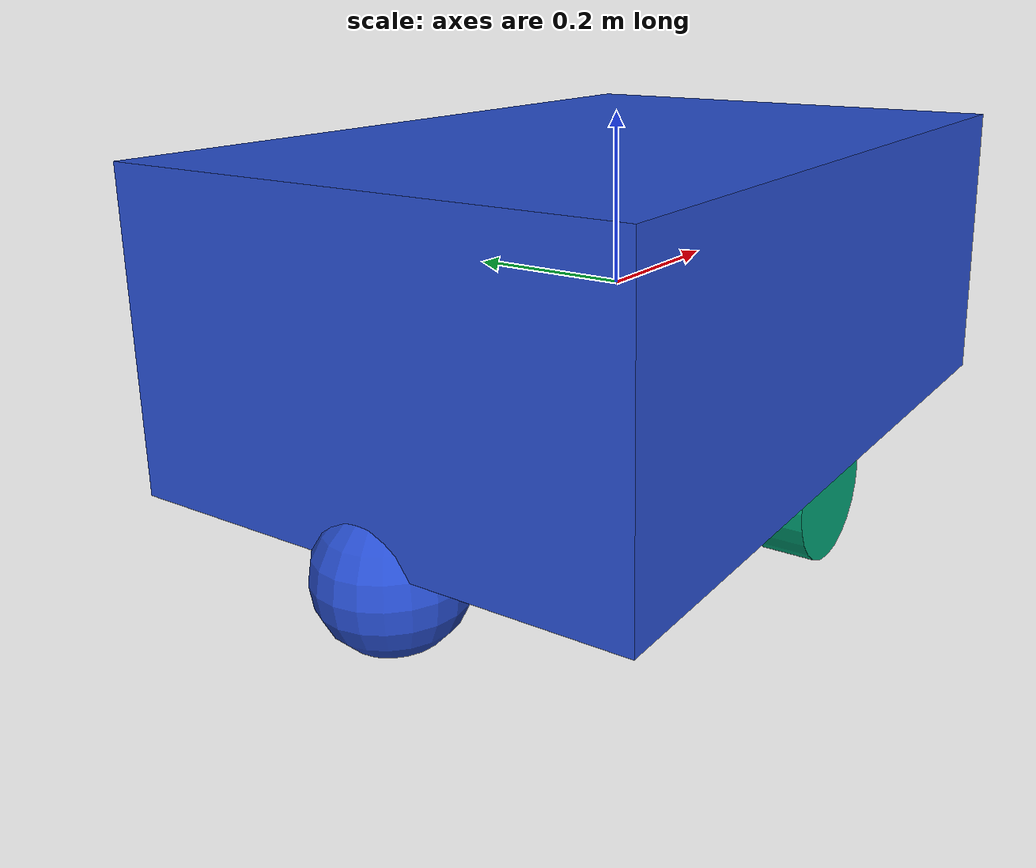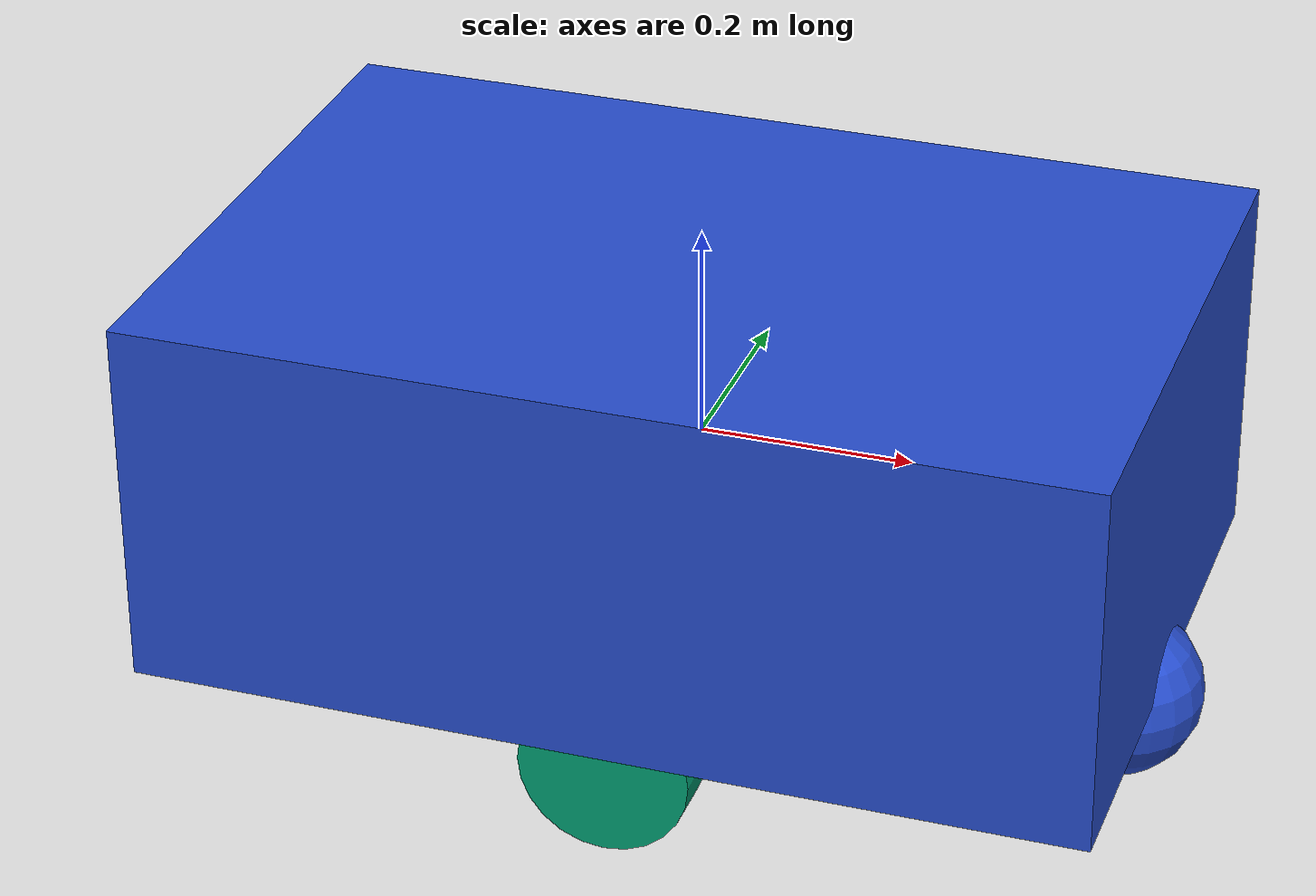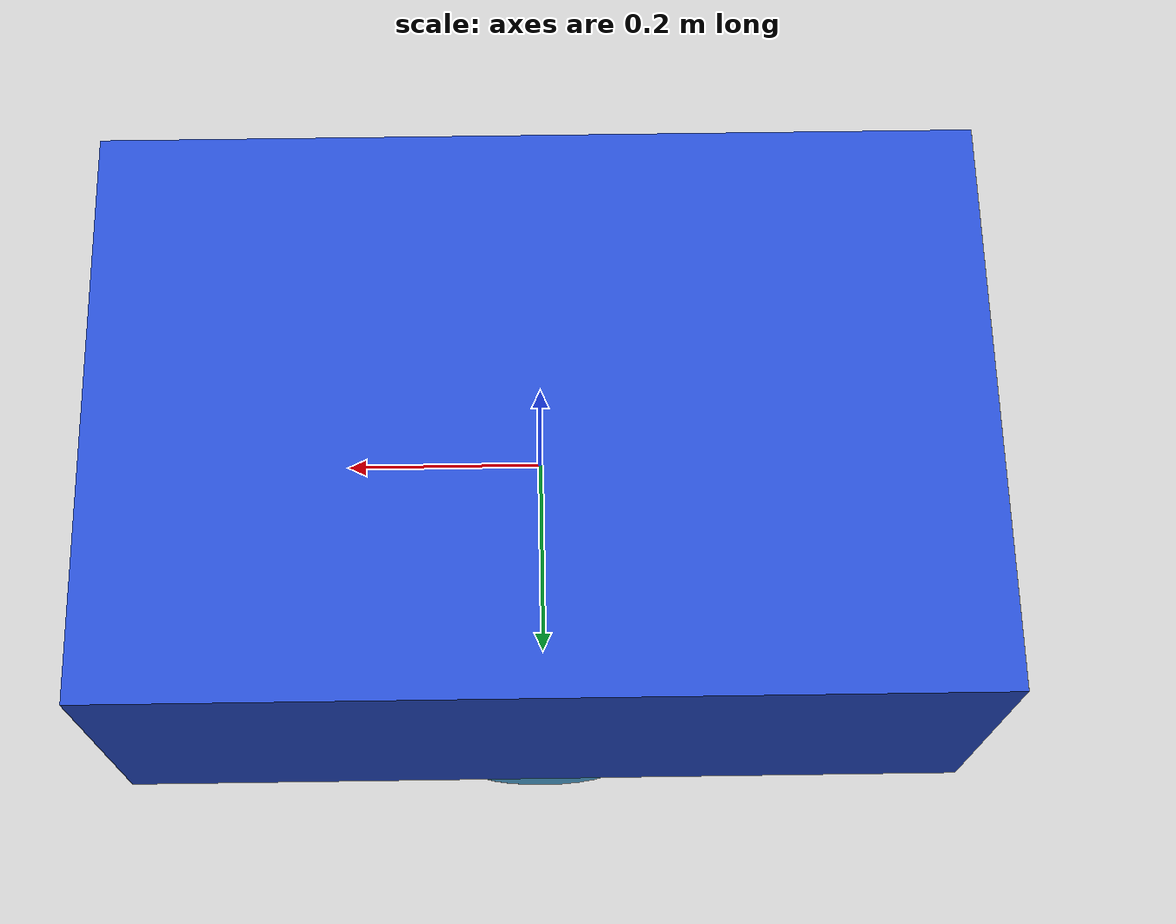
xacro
<?xml version='1.0'?>

<robot name="myrobot" xmlns:xacro="http://www.ros.org/wiki/xacro">

  <xacro:include filename="$(find mybot_description)/urdf/mybot.gazebo" />
  <xacro:include filename="$(find mybot_description)/urdf/materials.xacro" />
  <xacro:include filename="$(find mybot_description)/urdf/macros.xacro" />

  <link name='base_link'>
    <pose>0 0 0.6 0 0 0</pose>

    <inertial>
      <mass value="30.0"/>
      <origin xyz="0 0 0" rpy="0 0 0"/>
      <inertia
          ixx="1.78" ixy="0" ixz="0"
          iyy="2.09" iyz="0"
          izz="2.61"
      />
    </inertial>

    <collision name='collision'>
      <geometry>
        <box size=".89 .59 .35"/>
      </geometry>
    </collision>

    <visual name='chassis_visual'>
      <origin xyz="0 0 0" rpy=" 0 0 0"/>
      <geometry>
        <box size=".89 .59 .35"/>
      </geometry>
    </visual>

<!--Right-->

    <collision name='caster_collision'>
      <origin xyz="-0.4 0.0 -0.2" rpy=" 0 0 0"/>
      <geometry>
        <sphere radius="0.08"/>
      </geometry>
      <surface>
        <friction>
          <ode>
            <mu>0</mu>
            <mu2>0</mu2>
            <slip1>1.0</slip1>
            <slip2>1.0</slip2>
          </ode>
        </friction>
      </surface>
    </collision>

    <visual name='caster_visual'>
      <origin xyz="-0.4 0.0 -0.2" rpy=" 0 0 0"/>
      <geometry>
        <sphere radius="0.08"/>
      </geometry>
    </visual>

    <collision name='caster_collision_front'>
      <origin xyz="0.4 0.0 -0.2" rpy=" 0 0 0"/>
      <geometry>
        <sphere radius="0.08"/>
      </geometry>
      <surface>
        <friction>
          <ode>
            <mu>0</mu>
            <mu2>0</mu2>
            <slip1>1.0</slip1>
            <slip2>1.0</slip2>
          </ode>
        </friction>
      </surface>
    </collision>

    <visual name='caster_visual_front'>
      <origin xyz="0.4 0.0 -0.2" rpy=" 0 0 0"/>
      <geometry>
        <sphere radius="0.08"/>
      </geometry>
    </visual>

  </link>

  <link name="left_wheel">
    <!--origin xyz="0.1 0.13 0.1" rpy="0 1.5707 1.5707"/-->
    <collision name="collision">
      <origin xyz="0 0 0" rpy="0 1.5707 1.5707"/>
      <geometry>
        <cylinder radius="0.08" length="0.06"/>
      </geometry>
    </collision>
    <visual name="left_wheel_visual">
      <origin xyz="0 0 0" rpy="0 1.5707 1.5707"/>
      <geometry>
        <cylinder radius="0.08" length="0.06"/>
      </geometry>
    </visual>
    <inertial>
      <origin xyz="0 0 0" rpy="0 1.5707 1.5707"/>
      <mass value="10"/>
      <cylinder_inertia m="10" r="0.1" h="0.06"/>
      <inertia
        ixx="0.028" ixy="0.0" ixz="0.0"
        iyy="0.028" iyz="0.0"
        izz="0.05"/>
    </inertial>
  </link>

  <link name="right_wheel">
    <!--origin xyz="0.1 -0.13 0.1" rpy="0 1.5707 1.5707"/-->
    <collision name="collision">
      <origin xyz="0 0 0" rpy="0 1.5707 1.5707"/>
      <geometry>
        <cylinder radius="0.08" length="0.06"/>
      </geometry>
    </collision>
    <visual name="right_wheel_visual">
      <origin xyz="0 0 0" rpy="0 1.5707 1.5707"/>
      <geometry>
        <cylinder radius="0.08" length="0.06"/>
      </geometry>
    </visual>
    <inertial>
      <origin xyz="0 0 0" rpy="0 1.5707 1.5707"/>
      <mass value="10"/>
      <cylinder_inertia m="10" r="0.1" h="0.06"/>
      <inertia
        ixx="0.028" ixy="0.0" ixz="0.0"
        iyy="0.028" iyz="0.0"
        izz="0.05"/>
    </inertial>
  </link>

  <joint type="continuous" name="left_wheel_hinge">
    <origin xyz="0 0.25 -0.2" rpy="0 0 0"/>
    <child link="left_wheel"/>
    <parent link="base_link"/>
    <axis xyz="0 1 0" rpy="0 0 0"/>
    <limit effort="100" velocity="100"/>
    <joint_properties damping="0.0" friction="0.0"/>
  </joint>

  <joint type="continuous" name="right_wheel_hinge">
    <origin xyz="0 -0.25 -0.2" rpy="0 0 0"/>
    <child link="right_wheel"/>
    <parent link="base_link"/>
    <axis xyz="0 1 0" rpy="0 0 0"/>
    <limit effort="100" velocity="100"/>
    <joint_properties damping="0.0" friction="0.0"/>
  </joint>

</robot>
